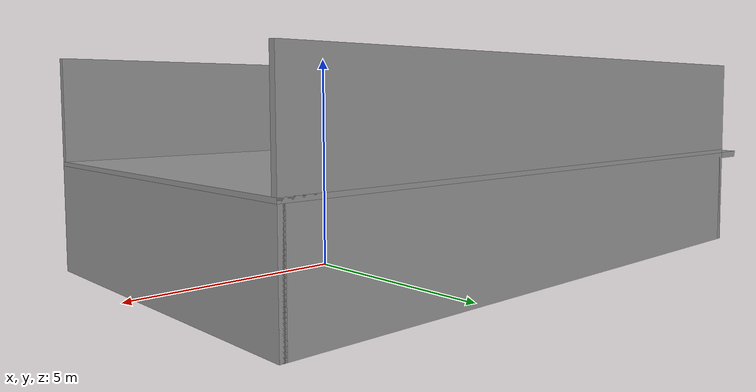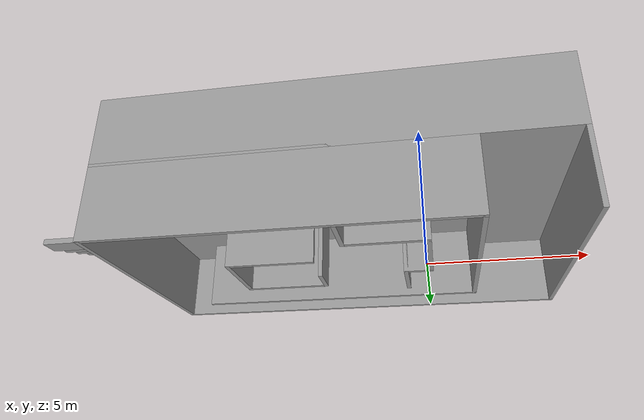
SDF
<?xml version='1.0'?>
<sdf version='1.7'>
  <model name='room'>
    <pose>-3.25804 0.750793 0 0 -0 0</pose>
    <link name='Floor_0'>
      <pose>0.501033 0 2.5 0 -0 0</pose>
      <visual name='Floor_0_Visual_0'>
        <pose>0 0 0.05 0 -0 0</pose>
        <geometry>
          <box>
            <size>15 9 0.1</size>
          </box>
        </geometry>
        <material>
          <script>
            <uri>file://media/materials/scripts/gazebo.material</uri>
            <name>Gazebo/Grey</name>
          </script>
          <ambient>1 1 1 1</ambient>
        </material>
        <meta>
          <layer>1</layer>
        </meta>
      </visual>
      <collision name='Floor_0_Collision_0'>
        <geometry>
          <box>
            <size>15 9 0.1</size>
          </box>
        </geometry>
        <pose>0 0 0.05 0 -0 0</pose>
      </collision>
    </link>
    <link name='Stairs_1'>
      <visual name='Stairs_1_Visual_0'>
        <pose>-7.50103 -4.1465 0.083333 0 -0 -3.14159</pose>
        <geometry>
          <box>
            <size>1 0.591087 0.166667</size>
          </box>
        </geometry>
        <material>
          <script>
            <uri>file://media/materials/scripts/gazebo.material</uri>
            <name>Gazebo/Grey</name>
          </script>
          <ambient>1 1 1 1</ambient>
        </material>
        <meta>
          <layer>0</layer>
        </meta>
      </visual>
      <collision name='Stairs_1_Collision_0'>
        <geometry>
          <box>
            <size>1 0.591087 0.166667</size>
          </box>
        </geometry>
        <pose>-7.50103 -4.1465 0.083333 0 -0 -3.14159</pose>
      </collision>
      <visual name='Stairs_1_Visual_1'>
        <pose>-7.50103 -3.55541 0.25 0 -0 -3.14159</pose>
        <geometry>
          <box>
            <size>1 0.591087 0.166667</size>
          </box>
        </geometry>
        <material>
          <script>
            <uri>file://media/materials/scripts/gazebo.material</uri>
            <name>Gazebo/Grey</name>
          </script>
          <ambient>1 1 1 1</ambient>
        </material>
        <meta>
          <layer>0</layer>
        </meta>
      </visual>
      <collision name='Stairs_1_Collision_1'>
        <geometry>
          <box>
            <size>1 0.591087 0.166667</size>
          </box>
        </geometry>
        <pose>-7.50103 -3.55541 0.25 0 -0 -3.14159</pose>
      </collision>
      <visual name='Stairs_1_Visual_2'>
        <pose>-7.50103 -2.96433 0.416667 0 -0 -3.14159</pose>
        <geometry>
          <box>
            <size>1 0.591087 0.166667</size>
          </box>
        </geometry>
        <material>
          <script>
            <uri>file://media/materials/scripts/gazebo.material</uri>
            <name>Gazebo/Grey</name>
          </script>
          <ambient>1 1 1 1</ambient>
        </material>
        <meta>
          <layer>0</layer>
        </meta>
      </visual>
      <collision name='Stairs_1_Collision_2'>
        <geometry>
          <box>
            <size>1 0.591087 0.166667</size>
          </box>
        </geometry>
        <pose>-7.50103 -2.96433 0.416667 0 -0 -3.14159</pose>
      </collision>
      <visual name='Stairs_1_Visual_3'>
        <pose>-7.50103 -2.37324 0.583333 0 -0 -3.14159</pose>
        <geometry>
          <box>
            <size>1 0.591087 0.166667</size>
          </box>
        </geometry>
        <material>
          <script>
            <uri>file://media/materials/scripts/gazebo.material</uri>
            <name>Gazebo/Grey</name>
          </script>
          <ambient>1 1 1 1</ambient>
        </material>
        <meta>
          <layer>0</layer>
        </meta>
      </visual>
      <collision name='Stairs_1_Collision_3'>
        <geometry>
          <box>
            <size>1 0.591087 0.166667</size>
          </box>
        </geometry>
        <pose>-7.50103 -2.37324 0.583333 0 -0 -3.14159</pose>
      </collision>
      <visual name='Stairs_1_Visual_4'>
        <pose>-7.50103 -1.78215 0.75 0 -0 -3.14159</pose>
        <geometry>
          <box>
            <size>1 0.591087 0.166667</size>
          </box>
        </geometry>
        <material>
          <script>
            <uri>file://media/materials/scripts/gazebo.material</uri>
            <name>Gazebo/Grey</name>
          </script>
          <ambient>1 1 1 1</ambient>
        </material>
        <meta>
          <layer>0</layer>
        </meta>
      </visual>
      <collision name='Stairs_1_Collision_4'>
        <geometry>
          <box>
            <size>1 0.591087 0.166667</size>
          </box>
        </geometry>
        <pose>-7.50103 -1.78215 0.75 0 -0 -3.14159</pose>
      </collision>
      <visual name='Stairs_1_Visual_5'>
        <pose>-7.50103 -1.19107 0.916667 0 -0 -3.14159</pose>
        <geometry>
          <box>
            <size>1 0.591087 0.166667</size>
          </box>
        </geometry>
        <material>
          <script>
            <uri>file://media/materials/scripts/gazebo.material</uri>
            <name>Gazebo/Grey</name>
          </script>
          <ambient>1 1 1 1</ambient>
        </material>
        <meta>
          <layer>0</layer>
        </meta>
      </visual>
      <collision name='Stairs_1_Collision_5'>
        <geometry>
          <box>
            <size>1 0.591087 0.166667</size>
          </box>
        </geometry>
        <pose>-7.50103 -1.19107 0.916667 0 -0 -3.14159</pose>
      </collision>
      <visual name='Stairs_1_Visual_6'>
        <pose>-7.50103 -0.599981 1.08333 0 -0 -3.14159</pose>
        <geometry>
          <box>
            <size>1 0.591087 0.166667</size>
          </box>
        </geometry>
        <material>
          <script>
            <uri>file://media/materials/scripts/gazebo.material</uri>
            <name>Gazebo/Grey</name>
          </script>
          <ambient>1 1 1 1</ambient>
        </material>
        <meta>
          <layer>0</layer>
        </meta>
      </visual>
      <collision name='Stairs_1_Collision_6'>
        <geometry>
          <box>
            <size>1 0.591087 0.166667</size>
          </box>
        </geometry>
        <pose>-7.50103 -0.599981 1.08333 0 -0 -3.14159</pose>
      </collision>
      <visual name='Stairs_1_Visual_7'>
        <pose>-7.50103 -0.008894 1.25 0 -0 -3.14159</pose>
        <geometry>
          <box>
            <size>1 0.591087 0.166667</size>
          </box>
        </geometry>
        <material>
          <script>
            <uri>file://media/materials/scripts/gazebo.material</uri>
            <name>Gazebo/Grey</name>
          </script>
          <ambient>1 1 1 1</ambient>
        </material>
        <meta>
          <layer>0</layer>
        </meta>
      </visual>
      <collision name='Stairs_1_Collision_7'>
        <geometry>
          <box>
            <size>1 0.591087 0.166667</size>
          </box>
        </geometry>
        <pose>-7.50103 -0.008894 1.25 0 -0 -3.14159</pose>
      </collision>
      <visual name='Stairs_1_Visual_8'>
        <pose>-7.50103 0.582193 1.41667 0 -0 -3.14159</pose>
        <geometry>
          <box>
            <size>1 0.591087 0.166667</size>
          </box>
        </geometry>
        <material>
          <script>
            <uri>file://media/materials/scripts/gazebo.material</uri>
            <name>Gazebo/Grey</name>
          </script>
          <ambient>1 1 1 1</ambient>
        </material>
        <meta>
          <layer>0</layer>
        </meta>
      </visual>
      <collision name='Stairs_1_Collision_8'>
        <geometry>
          <box>
            <size>1 0.591087 0.166667</size>
          </box>
        </geometry>
        <pose>-7.50103 0.582193 1.41667 0 -0 -3.14159</pose>
      </collision>
      <visual name='Stairs_1_Visual_9'>
        <pose>-7.50103 1.17328 1.58333 0 -0 -3.14159</pose>
        <geometry>
          <box>
            <size>1 0.591087 0.166667</size>
          </box>
        </geometry>
        <material>
          <script>
            <uri>file://media/materials/scripts/gazebo.material</uri>
            <name>Gazebo/Grey</name>
          </script>
          <ambient>1 1 1 1</ambient>
        </material>
        <meta>
          <layer>0</layer>
        </meta>
      </visual>
      <collision name='Stairs_1_Collision_9'>
        <geometry>
          <box>
            <size>1 0.591087 0.166667</size>
          </box>
        </geometry>
        <pose>-7.50103 1.17328 1.58333 0 -0 -3.14159</pose>
      </collision>
      <visual name='Stairs_1_Visual_10'>
        <pose>-7.50103 1.76437 1.75 0 -0 -3.14159</pose>
        <geometry>
          <box>
            <size>1 0.591087 0.166667</size>
          </box>
        </geometry>
        <material>
          <script>
            <uri>file://media/materials/scripts/gazebo.material</uri>
            <name>Gazebo/Grey</name>
          </script>
          <ambient>1 1 1 1</ambient>
        </material>
        <meta>
          <layer>0</layer>
        </meta>
      </visual>
      <collision name='Stairs_1_Collision_10'>
        <geometry>
          <box>
            <size>1 0.591087 0.166667</size>
          </box>
        </geometry>
        <pose>-7.50103 1.76437 1.75 0 -0 -3.14159</pose>
      </collision>
      <visual name='Stairs_1_Visual_11'>
        <pose>-7.50103 2.35545 1.91667 0 -0 -3.14159</pose>
        <geometry>
          <box>
            <size>1 0.591087 0.166667</size>
          </box>
        </geometry>
        <material>
          <script>
            <uri>file://media/materials/scripts/gazebo.material</uri>
            <name>Gazebo/Grey</name>
          </script>
          <ambient>1 1 1 1</ambient>
        </material>
        <meta>
          <layer>0</layer>
        </meta>
      </visual>
      <collision name='Stairs_1_Collision_11'>
        <geometry>
          <box>
            <size>1 0.591087 0.166667</size>
          </box>
        </geometry>
        <pose>-7.50103 2.35545 1.91667 0 -0 -3.14159</pose>
      </collision>
      <visual name='Stairs_1_Visual_12'>
        <pose>-7.50103 2.94654 2.08333 0 -0 -3.14159</pose>
        <geometry>
          <box>
            <size>1 0.591087 0.166667</size>
          </box>
        </geometry>
        <material>
          <script>
            <uri>file://media/materials/scripts/gazebo.material</uri>
            <name>Gazebo/Grey</name>
          </script>
          <ambient>1 1 1 1</ambient>
        </material>
        <meta>
          <layer>0</layer>
        </meta>
      </visual>
      <collision name='Stairs_1_Collision_12'>
        <geometry>
          <box>
            <size>1 0.591087 0.166667</size>
          </box>
        </geometry>
        <pose>-7.50103 2.94654 2.08333 0 -0 -3.14159</pose>
      </collision>
      <visual name='Stairs_1_Visual_13'>
        <pose>-7.50103 3.53763 2.25 0 -0 -3.14159</pose>
        <geometry>
          <box>
            <size>1 0.591087 0.166667</size>
          </box>
        </geometry>
        <material>
          <script>
            <uri>file://media/materials/scripts/gazebo.material</uri>
            <name>Gazebo/Grey</name>
          </script>
          <ambient>1 1 1 1</ambient>
        </material>
        <meta>
          <layer>0</layer>
        </meta>
      </visual>
      <collision name='Stairs_1_Collision_13'>
        <geometry>
          <box>
            <size>1 0.591087 0.166667</size>
          </box>
        </geometry>
        <pose>-7.50103 3.53763 2.25 0 -0 -3.14159</pose>
      </collision>
      <visual name='Stairs_1_Visual_14'>
        <pose>-7.50103 4.12871 2.41667 0 -0 -3.14159</pose>
        <geometry>
          <box>
            <size>1 0.591087 0.166667</size>
          </box>
        </geometry>
        <material>
          <script>
            <uri>file://media/materials/scripts/gazebo.material</uri>
            <name>Gazebo/Grey</name>
          </script>
          <ambient>1 1 1 1</ambient>
        </material>
        <meta>
          <layer>0</layer>
        </meta>
      </visual>
      <collision name='Stairs_1_Collision_14'>
        <geometry>
          <box>
            <size>1 0.591087 0.166667</size>
          </box>
        </geometry>
        <pose>-7.50103 4.12871 2.41667 0 -0 -3.14159</pose>
      </collision>
    </link>
    <link name='Wall_1'>
      <collision name='Wall_1_Collision'>
        <geometry>
          <box>
            <size>15 0.15 2.5</size>
          </box>
        </geometry>
        <pose>0 0 1.25 0 -0 0</pose>
      </collision>
      <visual name='Wall_1_Visual'>
        <pose>0 0 1.25 0 -0 0</pose>
        <geometry>
          <box>
            <size>15 0.15 2.5</size>
          </box>
        </geometry>
        <material>
          <script>
            <uri>file://media/materials/scripts/gazebo.material</uri>
            <name>Gazebo/Grey</name>
          </script>
          <ambient>1 1 1 1</ambient>
        </material>
        <meta>
          <layer>0</layer>
        </meta>
      </visual>
      <pose>0.501033 4.425 0 0 -0 0</pose>
    </link>
    <link name='Wall_10'>
      <collision name='Wall_10_Collision'>
        <geometry>
          <box>
            <size>12 0.15 2.5</size>
          </box>
        </geometry>
        <pose>0 0 1.25 0 -0 0</pose>
      </collision>
      <visual name='Wall_10_Visual'>
        <pose>0 0 1.25 0 -0 0</pose>
        <geometry>
          <box>
            <size>12 0.15 2.5</size>
          </box>
        </geometry>
        <material>
          <script>
            <uri>file://media/materials/scripts/gazebo.material</uri>
            <name>Gazebo/Grey</name>
          </script>
          <ambient>1 1 1 1</ambient>
        </material>
        <meta>
          <layer>0</layer>
        </meta>
      </visual>
      <pose>-0.998968 -4.425 0 0 -0 0</pose>
    </link>
    <link name='Wall_12'>
      <collision name='Wall_12_Collision'>
        <geometry>
          <box>
            <size>7.5 0.15 2.5</size>
          </box>
        </geometry>
        <pose>0 0 1.25 0 -0 0</pose>
      </collision>
      <visual name='Wall_12_Visual'>
        <pose>0 0 1.25 0 -0 0</pose>
        <geometry>
          <box>
            <size>7.5 0.15 2.5</size>
          </box>
        </geometry>
        <material>
          <script>
            <uri>file://media/materials/scripts/gazebo.material</uri>
            <name>Gazebo/Grey</name>
          </script>
          <ambient>1 1 1 1</ambient>
        </material>
        <meta>
          <layer>0</layer>
        </meta>
      </visual>
      <pose>4.92603 -0.75 0 0 -0 1.5708</pose>
    </link>
    <link name='Wall_14'>
      <collision name='Wall_14_Collision'>
        <geometry>
          <box>
            <size>10.5 0.15 2.5</size>
          </box>
        </geometry>
        <pose>0 0 1.25 0 -0 0</pose>
      </collision>
      <visual name='Wall_14_Visual'>
        <pose>0 0 1.25 0 -0 0</pose>
        <geometry>
          <box>
            <size>10.5 0.15 2.5</size>
          </box>
        </geometry>
        <material>
          <script>
            <uri>file://media/materials/scripts/gazebo.material</uri>
            <name>Gazebo/Grey</name>
          </script>
          <ambient>1 1 1 1</ambient>
        </material>
        <meta>
          <layer>0</layer>
        </meta>
      </visual>
      <pose>-0.248967 2.925 0 0 -0 3.14159</pose>
    </link>
    <link name='Wall_17'>
      <collision name='Wall_17_Collision'>
        <geometry>
          <box>
            <size>2 0.15 2.5</size>
          </box>
        </geometry>
        <pose>0 0 1.25 0 -0 0</pose>
      </collision>
      <visual name='Wall_17_Visual'>
        <pose>0 0 1.25 0 -0 0</pose>
        <geometry>
          <box>
            <size>2 0.15 2.5</size>
          </box>
        </geometry>
        <material>
          <script>
            <uri>file://media/materials/scripts/gazebo.material</uri>
            <name>Gazebo/Grey</name>
          </script>
          <ambient>1 1 1 1</ambient>
        </material>
        <meta>
          <layer>0</layer>
        </meta>
      </visual>
      <pose>2.5309 0.920632 0 0 -0 -1.5708</pose>
    </link>
    <link name='Wall_18'>
      <collision name='Wall_18_Collision'>
        <geometry>
          <box>
            <size>1 0.15 2.5</size>
          </box>
        </geometry>
        <pose>0 0 1.25 0 -0 0</pose>
      </collision>
      <visual name='Wall_18_Visual'>
        <pose>0 0 1.25 0 -0 0</pose>
        <geometry>
          <box>
            <size>1 0.15 2.5</size>
          </box>
        </geometry>
        <material>
          <script>
            <uri>file://media/materials/scripts/gazebo.material</uri>
            <name>Gazebo/Grey</name>
          </script>
          <ambient>1 1 1 1</ambient>
        </material>
        <meta>
          <layer>0</layer>
        </meta>
      </visual>
      <pose>2.9559 -0.004368 0 0 -0 0</pose>
    </link>
    <link name='Wall_19'>
      <collision name='Wall_19_Collision'>
        <geometry>
          <box>
            <size>3 0.15 2.5</size>
          </box>
        </geometry>
        <pose>0 0 1.25 0 -0 0</pose>
      </collision>
      <visual name='Wall_19_Visual'>
        <pose>0 0 1.25 0 -0 0</pose>
        <geometry>
          <box>
            <size>3 0.15 2.5</size>
          </box>
        </geometry>
        <material>
          <script>
            <uri>file://media/materials/scripts/gazebo.material</uri>
            <name>Gazebo/Grey</name>
          </script>
          <ambient>1 1 1 1</ambient>
        </material>
        <meta>
          <layer>0</layer>
        </meta>
      </visual>
      <pose>3.3809 -1.42937 0 0 -0 -1.5708</pose>
    </link>
    <link name='Wall_2'>
      <collision name='Wall_2_Collision'>
        <geometry>
          <box>
            <size>9 0.15 2.5</size>
          </box>
        </geometry>
        <pose>0 0 1.25 0 -0 0</pose>
      </collision>
      <visual name='Wall_2_Visual'>
        <pose>0 0 1.25 0 -0 0</pose>
        <geometry>
          <box>
            <size>9 0.15 2.5</size>
          </box>
        </geometry>
        <material>
          <script>
            <uri>file://media/materials/scripts/gazebo.material</uri>
            <name>Gazebo/Grey</name>
          </script>
          <ambient>1 1 1 1</ambient>
        </material>
        <meta>
          <layer>0</layer>
        </meta>
      </visual>
      <pose>7.92603 0 0 0 -0 -1.5708</pose>
    </link>
    <link name='Wall_20'>
      <collision name='Wall_20_Collision'>
        <geometry>
          <box>
            <size>2.75 0.15 2.5</size>
          </box>
        </geometry>
        <pose>0 0 1.25 0 -0 0</pose>
      </collision>
      <visual name='Wall_20_Visual'>
        <pose>0 0 1.25 0 -0 0</pose>
        <geometry>
          <box>
            <size>2.75 0.15 2.5</size>
          </box>
        </geometry>
        <material>
          <script>
            <uri>file://media/materials/scripts/gazebo.material</uri>
            <name>Gazebo/Grey</name>
          </script>
          <ambient>1 1 1 1</ambient>
        </material>
        <meta>
          <layer>0</layer>
        </meta>
      </visual>
      <pose>2.0809 -2.85437 0 0 -0 3.14159</pose>
    </link>
    <link name='Wall_23'>
      <collision name='Wall_23_Collision'>
        <geometry>
          <box>
            <size>1.71833 0.15 2.5</size>
          </box>
        </geometry>
        <pose>0 0 1.25 0 -0 0</pose>
      </collision>
      <visual name='Wall_23_Visual'>
        <pose>0 0 1.25 0 -0 0</pose>
        <geometry>
          <box>
            <size>1.71833 0.15 2.5</size>
          </box>
        </geometry>
        <material>
          <script>
            <uri>file://media/materials/scripts/gazebo.material</uri>
            <name>Gazebo/Grey</name>
          </script>
          <ambient>1 1 1 1</ambient>
        </material>
        <meta>
          <layer>0</layer>
        </meta>
      </visual>
      <pose>0.779126 -3.63853 0 0 -0 1.56853</pose>
    </link>
    <link name='Wall_25'>
      <collision name='Wall_25_Collision'>
        <geometry>
          <box>
            <size>3 0.15 2.5</size>
          </box>
        </geometry>
        <pose>0 0 1.25 0 -0 0</pose>
      </collision>
      <visual name='Wall_25_Visual'>
        <pose>0 0 1.25 0 -0 0</pose>
        <geometry>
          <box>
            <size>3 0.15 2.5</size>
          </box>
        </geometry>
        <material>
          <script>
            <uri>file://media/materials/scripts/gazebo.material</uri>
            <name>Gazebo/Grey</name>
          </script>
          <ambient>1 1 1 1</ambient>
        </material>
        <meta>
          <layer>0</layer>
        </meta>
      </visual>
      <pose>-1.86475 1.12182 0 0 -0 0</pose>
    </link>
    <link name='Wall_26'>
      <collision name='Wall_26_Collision'>
        <geometry>
          <box>
            <size>1.25 0.15 2.5</size>
          </box>
        </geometry>
        <pose>0 0 1.25 0 -0 0</pose>
      </collision>
      <visual name='Wall_26_Visual'>
        <pose>0 0 1.25 0 -0 0</pose>
        <geometry>
          <box>
            <size>1.25 0.15 2.5</size>
          </box>
        </geometry>
        <material>
          <script>
            <uri>file://media/materials/scripts/gazebo.material</uri>
            <name>Gazebo/Grey</name>
          </script>
          <ambient>1 1 1 1</ambient>
        </material>
        <meta>
          <layer>0</layer>
        </meta>
      </visual>
      <pose>-0.439749 0.571822 0 0 -0 -1.5708</pose>
    </link>
    <link name='Wall_28'>
      <collision name='Wall_28_Collision'>
        <geometry>
          <box>
            <size>2.75 0.15 2.5</size>
          </box>
        </geometry>
        <pose>0 0 1.25 0 -0 0</pose>
      </collision>
      <visual name='Wall_28_Visual'>
        <pose>0 0 1.25 0 -0 0</pose>
        <geometry>
          <box>
            <size>2.75 0.15 2.5</size>
          </box>
        </geometry>
        <material>
          <script>
            <uri>file://media/materials/scripts/gazebo.material</uri>
            <name>Gazebo/Grey</name>
          </script>
          <ambient>1 1 1 1</ambient>
        </material>
        <meta>
          <layer>0</layer>
        </meta>
      </visual>
      <pose>-3.28975 -0.178178 0 0 -0 -1.5708</pose>
    </link>
    <link name='Wall_29'>
      <collision name='Wall_29_Collision'>
        <geometry>
          <box>
            <size>3 0.15 2.5</size>
          </box>
        </geometry>
        <pose>0 0 1.25 0 -0 0</pose>
      </collision>
      <visual name='Wall_29_Visual'>
        <pose>0 0 1.25 0 -0 0</pose>
        <geometry>
          <box>
            <size>3 0.15 2.5</size>
          </box>
        </geometry>
        <material>
          <script>
            <uri>file://media/materials/scripts/gazebo.material</uri>
            <name>Gazebo/Grey</name>
          </script>
          <ambient>1 1 1 1</ambient>
        </material>
        <meta>
          <layer>0</layer>
        </meta>
      </visual>
      <pose>-1.86475 -1.47818 0 0 -0 0</pose>
    </link>
    <link name='Wall_4'>
      <collision name='Wall_4_Collision'>
        <geometry>
          <box>
            <size>9 0.15 2.5</size>
          </box>
        </geometry>
        <pose>0 0 1.25 0 -0 0</pose>
      </collision>
      <visual name='Wall_4_Visual'>
        <pose>0 0 1.25 0 -0 0</pose>
        <geometry>
          <box>
            <size>9 0.15 2.5</size>
          </box>
        </geometry>
        <material>
          <script>
            <uri>file://media/materials/scripts/gazebo.material</uri>
            <name>Gazebo/Grey</name>
          </script>
          <ambient>1 1 1 1</ambient>
        </material>
        <meta>
          <layer>0</layer>
        </meta>
      </visual>
      <pose>-6.92397 0 0 0 -0 1.5708</pose>
    </link>
    <link name='Wall_6'>
      <collision name='Wall_6_Collision'>
        <geometry>
          <box>
            <size>15 0.15 2.5</size>
          </box>
        </geometry>
        <pose>0 0 1.25 0 -0 0</pose>
      </collision>
      <visual name='Wall_6_Visual'>
        <pose>0 0 1.25 0 -0 0</pose>
        <geometry>
          <box>
            <size>15 0.15 2.5</size>
          </box>
        </geometry>
        <material>
          <script>
            <uri>file://media/materials/scripts/gazebo.material</uri>
            <name>Gazebo/Grey</name>
          </script>
          <ambient>1 1 1 1</ambient>
        </material>
        <meta>
          <layer>1</layer>
        </meta>
      </visual>
      <pose>0.501032 4.425 2.5 0 -0 0</pose>
    </link>
    <link name='Wall_8'>
      <collision name='Wall_8_Collision'>
        <geometry>
          <box>
            <size>15 0.15 2.5</size>
          </box>
        </geometry>
        <pose>0 0 1.25 0 -0 0</pose>
      </collision>
      <visual name='Wall_8_Visual'>
        <pose>0 0 1.25 0 -0 0</pose>
        <geometry>
          <box>
            <size>15 0.15 2.5</size>
          </box>
        </geometry>
        <material>
          <script>
            <uri>file://media/materials/scripts/gazebo.material</uri>
            <name>Gazebo/Grey</name>
          </script>
          <ambient>1 1 1 1</ambient>
        </material>
        <meta>
          <layer>1</layer>
        </meta>
      </visual>
      <pose>0.501032 -4.425 2.5 0 -0 3.14159</pose>
    </link>
    <static>1</static>
  </model>
</sdf>
